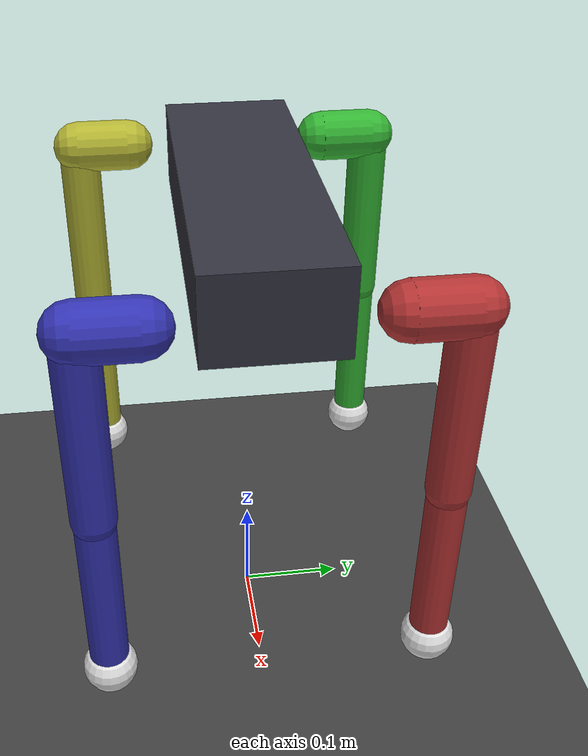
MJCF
<mujoco model="simple_quadruped_12dof">
  <compiler angle="radian" coordinate="local"/>
  <option timestep="0.0041666667" gravity="0 0 -9.81" integrator="RK4"/>
  <size nstack="300000" njmax="2000" nconmax="500"/>

  <default>
    <joint limited="true" damping="1.2" armature="0.02"/>
    <geom friction="0.9 0.2 0.1" density="400" contype="1" conaffinity="1" solref="0.01 1" solimp="0.9 0.95 0.001"/>
    <motor ctrlrange="-180 180"/>
  </default>

  <asset>
    <texture type="skybox" builtin="gradient" rgb1="0.8 0.9 1.0" rgb2="0.1 0.1 0.2" width="512" height="512"/>
    <texture name="grid" type="2d" builtin="checker" rgb1="0.2 0.2 0.2" rgb2="0.3 0.3 0.3" width="512" height="512"/>
    <material name="gridmat" texture="grid" texrepeat="6 6" reflectance="0.05"/>
  </asset>

  <worldbody>
    <geom name="ground" type="plane" size="5 5 0.1" material="gridmat" condim="3"/>

    <body name="base" pos="0 0 0.45">
      <freejoint name="root"/>
      <geom name="base_geom" type="box" size="0.18 0.06 0.04" rgba="0.2 0.2 0.25 1" density="450"/>

      <!-- nominal hip locations -->
      <!-- FL -->
      <body name="FL_hip" pos="0.18 0.10 0.0">
        <joint name="FL_hip_abd" axis="1 0 0" range="-0.6 0.6"/>
        <geom type="capsule" fromto="0 0 0 0 0.05 0" size="0.025" rgba="0.7 0.2 0.2 1"/>
        <body name="FL_thigh" pos="0 0.05 0">
          <joint name="FL_hip_flex" axis="0 1 0" range="-1.2 1.2"/>
          <geom type="capsule" fromto="0 0 0 0 0 -0.18" size="0.02" rgba="0.7 0.2 0.2 1"/>
          <body name="FL_shank" pos="0 0 -0.18">
            <joint name="FL_knee" axis="0 1 0" range="-2.0 0.1"/>
            <geom type="capsule" fromto="0 0 0 0 0 -0.18" size="0.018" rgba="0.7 0.2 0.2 1"/>
            <geom name="FL_foot_geom" type="sphere" pos="0 0 -0.18" size="0.025" rgba="0.9 0.9 0.9 1" friction="1.0 0.3 0.1"/>
            <site name="FL_foot" pos="0 0 -0.18" size="0.01" rgba="0 1 0 1"/>
          </body>
        </body>
      </body>

      <!-- FR -->
      <body name="FR_hip" pos="0.18 -0.10 0.0">
        <joint name="FR_hip_abd" axis="1 0 0" range="-0.6 0.6"/>
        <geom type="capsule" fromto="0 0 0 0 -0.05 0" size="0.025" rgba="0.2 0.2 0.7 1"/>
        <body name="FR_thigh" pos="0 -0.05 0">
          <joint name="FR_hip_flex" axis="0 1 0" range="-1.2 1.2"/>
          <geom type="capsule" fromto="0 0 0 0 0 -0.18" size="0.02" rgba="0.2 0.2 0.7 1"/>
          <body name="FR_shank" pos="0 0 -0.18">
            <joint name="FR_knee" axis="0 1 0" range="-2.0 0.1"/>
            <geom type="capsule" fromto="0 0 0 0 0 -0.18" size="0.018" rgba="0.2 0.2 0.7 1"/>
            <geom name="FR_foot_geom" type="sphere" pos="0 0 -0.18" size="0.025" rgba="0.9 0.9 0.9 1" friction="1.0 0.3 0.1"/>
            <site name="FR_foot" pos="0 0 -0.18" size="0.01" rgba="0 1 0 1"/>
          </body>
        </body>
      </body>

      <!-- RL -->
      <body name="RL_hip" pos="-0.18 0.10 0.0">
        <joint name="RL_hip_abd" axis="1 0 0" range="-0.6 0.6"/>
        <geom type="capsule" fromto="0 0 0 0 0.05 0" size="0.025" rgba="0.2 0.7 0.2 1"/>
        <body name="RL_thigh" pos="0 0.05 0">
          <joint name="RL_hip_flex" axis="0 1 0" range="-1.2 1.2"/>
          <geom type="capsule" fromto="0 0 0 0 0 -0.18" size="0.02" rgba="0.2 0.7 0.2 1"/>
          <body name="RL_shank" pos="0 0 -0.18">
            <joint name="RL_knee" axis="0 1 0" range="-2.0 0.1"/>
            <geom type="capsule" fromto="0 0 0 0 0 -0.18" size="0.018" rgba="0.2 0.7 0.2 1"/>
            <geom name="RL_foot_geom" type="sphere" pos="0 0 -0.18" size="0.025" rgba="0.9 0.9 0.9 1" friction="1.0 0.3 0.1"/>
            <site name="RL_foot" pos="0 0 -0.18" size="0.01" rgba="0 1 0 1"/>
          </body>
        </body>
      </body>

      <!-- RR -->
      <body name="RR_hip" pos="-0.18 -0.10 0.0">
        <joint name="RR_hip_abd" axis="1 0 0" range="-0.6 0.6"/>
        <geom type="capsule" fromto="0 0 0 0 -0.05 0" size="0.025" rgba="0.7 0.7 0.2 1"/>
        <body name="RR_thigh" pos="0 -0.05 0">
          <joint name="RR_hip_flex" axis="0 1 0" range="-1.2 1.2"/>
          <geom type="capsule" fromto="0 0 0 0 0 -0.18" size="0.02" rgba="0.7 0.7 0.2 1"/>
          <body name="RR_shank" pos="0 0 -0.18">
            <joint name="RR_knee" axis="0 1 0" range="-2.0 0.1"/>
            <geom type="capsule" fromto="0 0 0 0 0 -0.18" size="0.018" rgba="0.7 0.7 0.2 1"/>
            <geom name="RR_foot_geom" type="sphere" pos="0 0 -0.18" size="0.025" rgba="0.9 0.9 0.9 1" friction="1.0 0.3 0.1"/>
            <site name="RR_foot" pos="0 0 -0.18" size="0.01" rgba="0 1 0 1"/>
          </body>
        </body>
      </body>

    </body>
  </worldbody>

  <actuator>
    <!-- order must match joint mapping in code -->
    <motor name="m_FL_hip_abd" joint="FL_hip_abd" gear="1"/>
    <motor name="m_FL_hip_flex" joint="FL_hip_flex" gear="1"/>
    <motor name="m_FL_knee" joint="FL_knee" gear="1"/>

    <motor name="m_FR_hip_abd" joint="FR_hip_abd" gear="1"/>
    <motor name="m_FR_hip_flex" joint="FR_hip_flex" gear="1"/>
    <motor name="m_FR_knee" joint="FR_knee" gear="1"/>

    <motor name="m_RL_hip_abd" joint="RL_hip_abd" gear="1"/>
    <motor name="m_RL_hip_flex" joint="RL_hip_flex" gear="1"/>
    <motor name="m_RL_knee" joint="RL_knee" gear="1"/>

    <motor name="m_RR_hip_abd" joint="RR_hip_abd" gear="1"/>
    <motor name="m_RR_hip_flex" joint="RR_hip_flex" gear="1"/>
    <motor name="m_RR_knee" joint="RR_knee" gear="1"/>
  </actuator>
</mujoco>
